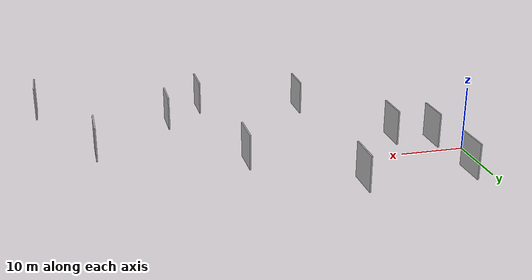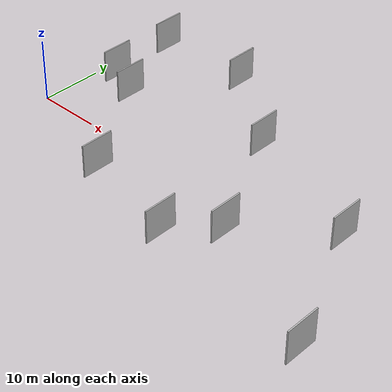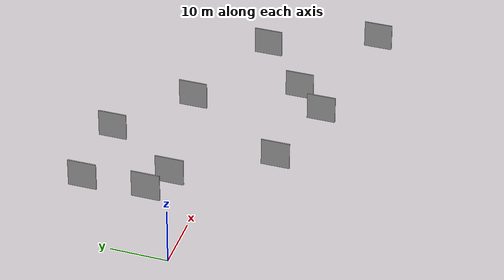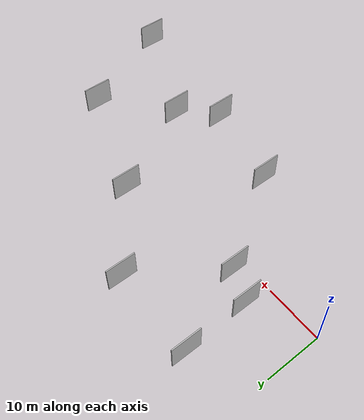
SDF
<sdf version="1.6">
 <world name="default">
  <scene>
   <sky><clouds><speed>12</speed></clouds></sky>
   <ambient>0.4 0.4 0.4 1</ambient>
   <background>0.7 0.7 0.7 1</background>
   <shadows>1</shadows>
  </scene>
  <gravity>0 0 -9.8066</gravity>
  <magnetic_field>6e-06 2.3e-05 -4.2e-05</magnetic_field>
  <physics default="0" name="default_physics" type="ode">
   <ode>
    <solver>
     <type>quick</type>
     <iters>10</iters>
     <sor>1.0</sor>
     <use_dynamic_moi_rescaling>0</use_dynamic_moi_rescaling>
    </solver>
    <constraints>
     <cfm>0</cfm>
     <erp>0.2</erp>
     <contact_max_correcting_vel>100</contact_max_correcting_vel>
     <contact_surface_layer>0.001</contact_surface_layer>
    </constraints>
   </ode>
   <max_step_size>0.004</max_step_size>
   <real_time_factor>1</real_time_factor>
   <real_time_update_rate>250</real_time_update_rate>
  </physics>
  <light name="sun" type="directional">
   <pose>0 0 10 0 0 0</pose>
   <diffuse>0.8 0.8 0.8 1</diffuse>
   <specular>0.2 0.2 0.2 1</specular>
   <attenuation>
    <range>1000</range>
    <constant>0.9</constant>
    <linear>0.01</linear>
    <quadratic>0.001</quadratic>
   </attenuation>
   <direction>-0.5 0.1 -0.9</direction>
  </light>
  <model name="grey_wall_1">
   <static>1</static>
   <pose>14.0547 4.5147 5.0 0.000000 0.000000 1.570796</pose>
   <link name="link">
    <pose>0 0 2.50 0 0 0</pose>
    <collision name="collision"><geometry><box><size>5.00 0.2 5.00</size></box></geometry></collision>
    <visual name="visual">
     <cast_shadows>0</cast_shadows>
     <geometry><box><size>5.00 0.2 5.00</size></box></geometry>
     <material>
      <script>
       <uri>model://HANNAS_wall/materials/scripts</uri>
       <uri>model://HANNAS_wall/materials/textures</uri>
       <name>vrc/HANNAS_wall</name>
      </script>
     </material>
    </visual>
   </link>
  </model>
  <model name="grey_wall_2">
   <static>1</static>
   <pose>8.4433 17.9138 5.0 0.000000 0.000000 1.570796</pose>
   <link name="link">
    <pose>0 0 2.50 0 0 0</pose>
    <collision name="collision"><geometry><box><size>5.00 0.2 5.00</size></box></geometry></collision>
    <visual name="visual">
     <cast_shadows>0</cast_shadows>
     <geometry><box><size>5.00 0.2 5.00</size></box></geometry>
     <material>
      <script>
       <uri>model://HANNAS_wall/materials/scripts</uri>
       <uri>model://HANNAS_wall/materials/textures</uri>
       <name>vrc/HANNAS_wall</name>
      </script>
     </material>
    </visual>
   </link>
  </model>
  <model name="grey_wall_3">
   <static>1</static>
   <pose>44.9022 -8.8170 5.0 0.000000 0.000000 1.570796</pose>
   <link name="link">
    <pose>0 0 2.50 0 0 0</pose>
    <collision name="collision"><geometry><box><size>5.00 0.2 5.00</size></box></geometry></collision>
    <visual name="visual">
     <cast_shadows>0</cast_shadows>
     <geometry><box><size>5.00 0.2 5.00</size></box></geometry>
     <material>
      <script>
       <uri>model://HANNAS_wall/materials/scripts</uri>
       <uri>model://HANNAS_wall/materials/textures</uri>
       <name>vrc/HANNAS_wall</name>
      </script>
     </material>
    </visual>
   </link>
  </model>
  <model name="grey_wall_4">
   <static>1</static>
   <pose>36.4691 7.9719 5.0 0.000000 0.000000 1.570796</pose>
   <link name="link">
    <pose>0 0 2.50 0 0 0</pose>
    <collision name="collision"><geometry><box><size>5.00 0.2 5.00</size></box></geometry></collision>
    <visual name="visual">
     <cast_shadows>0</cast_shadows>
     <geometry><box><size>5.00 0.2 5.00</size></box></geometry>
     <material>
      <script>
       <uri>model://HANNAS_wall/materials/scripts</uri>
       <uri>model://HANNAS_wall/materials/textures</uri>
       <name>vrc/HANNAS_wall</name>
      </script>
     </material>
    </visual>
   </link>
  </model>
  <model name="grey_wall_5">
   <static>1</static>
   <pose>56.1611 0.4177 5.0 0.000000 0.000000 1.570796</pose>
   <link name="link">
    <pose>0 0 2.50 0 0 0</pose>
    <collision name="collision"><geometry><box><size>5.00 0.2 5.00</size></box></geometry></collision>
    <visual name="visual">
     <cast_shadows>0</cast_shadows>
     <geometry><box><size>5.00 0.2 5.00</size></box></geometry>
     <material>
      <script>
       <uri>model://HANNAS_wall/materials/scripts</uri>
       <uri>model://HANNAS_wall/materials/textures</uri>
       <name>vrc/HANNAS_wall</name>
      </script>
     </material>
    </visual>
   </link>
  </model>
  <model name="grey_wall_6">
   <static>1</static>
   <pose>8.7932 6.8609 5.0 0.000000 0.000000 1.570796</pose>
   <link name="link">
    <pose>0 0 2.50 0 0 0</pose>
    <collision name="collision"><geometry><box><size>5.00 0.2 5.00</size></box></geometry></collision>
    <visual name="visual">
     <cast_shadows>0</cast_shadows>
     <geometry><box><size>5.00 0.2 5.00</size></box></geometry>
     <material>
      <script>
       <uri>model://HANNAS_wall/materials/scripts</uri>
       <uri>model://HANNAS_wall/materials/textures</uri>
       <name>vrc/HANNAS_wall</name>
      </script>
     </material>
    </visual>
   </link>
  </model>
  <model name="grey_wall_7">
   <static>1</static>
   <pose>23.4070 18.0528 5.0 0.000000 0.000000 1.570796</pose>
   <link name="link">
    <pose>0 0 2.50 0 0 0</pose>
    <collision name="collision"><geometry><box><size>5.00 0.2 5.00</size></box></geometry></collision>
    <visual name="visual">
     <cast_shadows>0</cast_shadows>
     <geometry><box><size>5.00 0.2 5.00</size></box></geometry>
     <material>
      <script>
       <uri>model://HANNAS_wall/materials/scripts</uri>
       <uri>model://HANNAS_wall/materials/textures</uri>
       <name>vrc/HANNAS_wall</name>
      </script>
     </material>
    </visual>
   </link>
  </model>
  <model name="grey_wall_8">
   <static>1</static>
   <pose>39.2643 -14.3790 5.0 0.000000 0.000000 1.570796</pose>
   <link name="link">
    <pose>0 0 2.50 0 0 0</pose>
    <collision name="collision"><geometry><box><size>5.00 0.2 5.00</size></box></geometry></collision>
    <visual name="visual">
     <cast_shadows>0</cast_shadows>
     <geometry><box><size>5.00 0.2 5.00</size></box></geometry>
     <material>
      <script>
       <uri>model://HANNAS_wall/materials/scripts</uri>
       <uri>model://HANNAS_wall/materials/textures</uri>
       <name>vrc/HANNAS_wall</name>
      </script>
     </material>
    </visual>
   </link>
  </model>
  <model name="grey_wall_9">
   <static>1</static>
   <pose>64.2076 -17.7103 5.0 0.000000 0.000000 1.570796</pose>
   <link name="link">
    <pose>0 0 2.50 0 0 0</pose>
    <collision name="collision"><geometry><box><size>5.00 0.2 5.00</size></box></geometry></collision>
    <visual name="visual">
     <cast_shadows>0</cast_shadows>
     <geometry><box><size>5.00 0.2 5.00</size></box></geometry>
     <material>
      <script>
       <uri>model://HANNAS_wall/materials/scripts</uri>
       <uri>model://HANNAS_wall/materials/textures</uri>
       <name>vrc/HANNAS_wall</name>
      </script>
     </material>
    </visual>
   </link>
  </model>
  <model name="grey_wall_10">
   <static>1</static>
   <pose>23.9682 -10.8684 5.0 0.000000 0.000000 1.570796</pose>
   <link name="link">
    <pose>0 0 2.50 0 0 0</pose>
    <collision name="collision"><geometry><box><size>5.00 0.2 5.00</size></box></geometry></collision>
    <visual name="visual">
     <cast_shadows>0</cast_shadows>
     <geometry><box><size>5.00 0.2 5.00</size></box></geometry>
     <material>
      <script>
       <uri>model://HANNAS_wall/materials/scripts</uri>
       <uri>model://HANNAS_wall/materials/textures</uri>
       <name>vrc/HANNAS_wall</name>
      </script>
     </material>
    </visual>
   </link>
  </model>
 </world>
</sdf>
